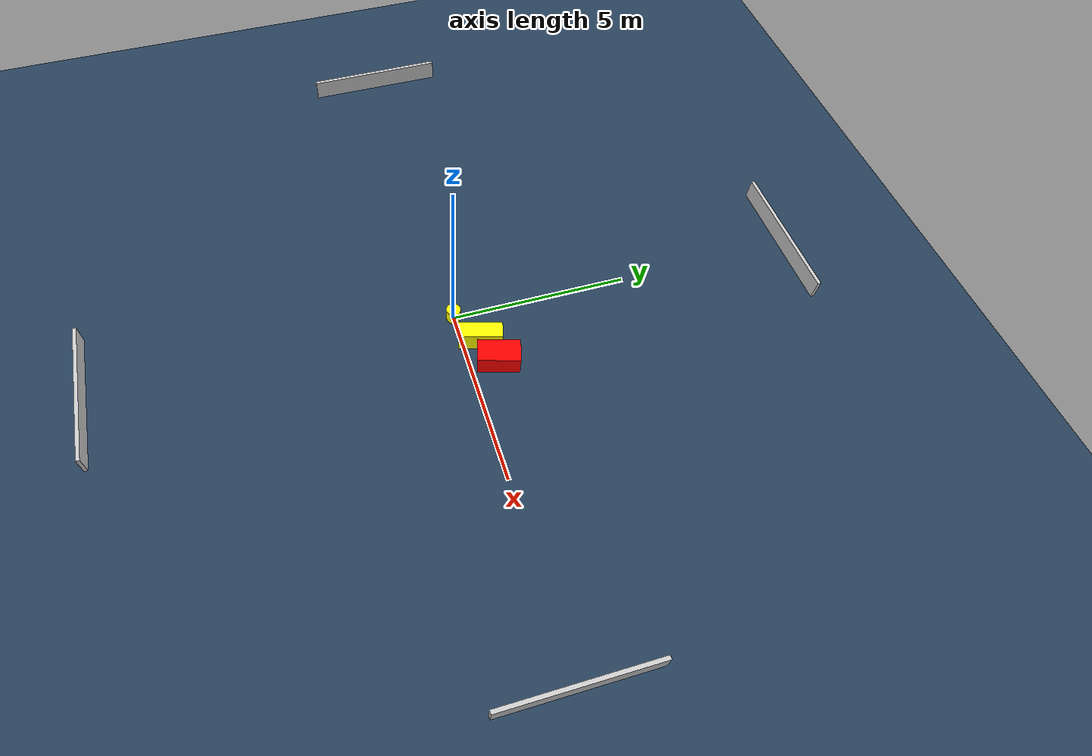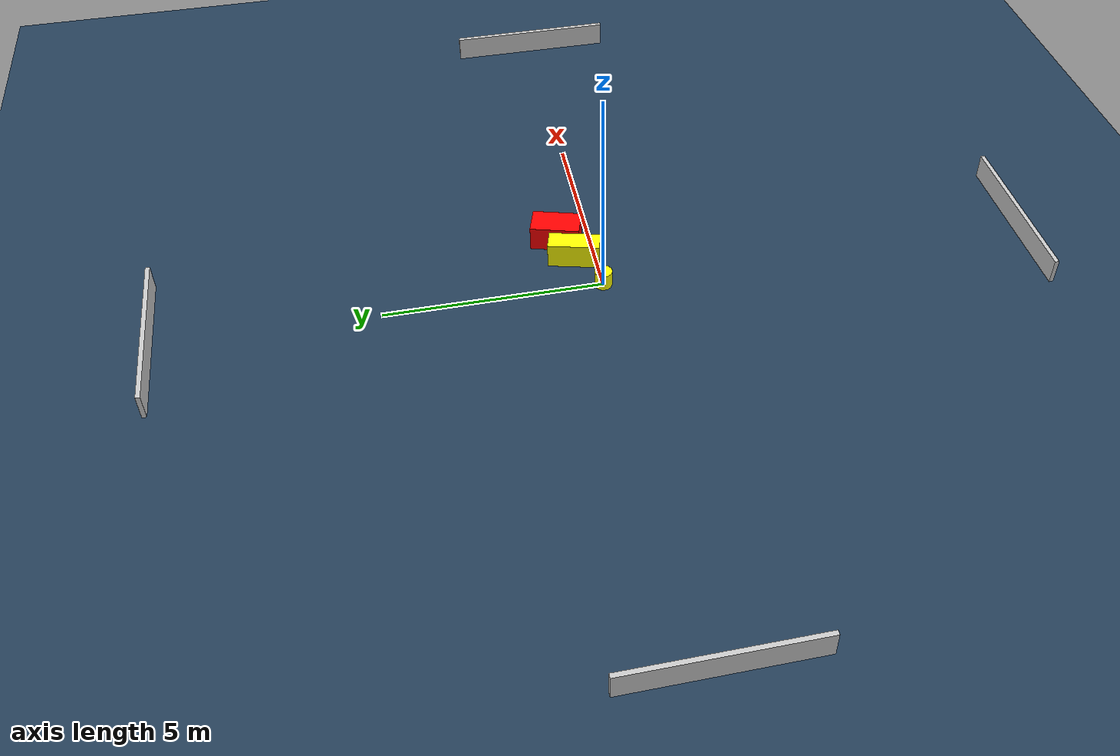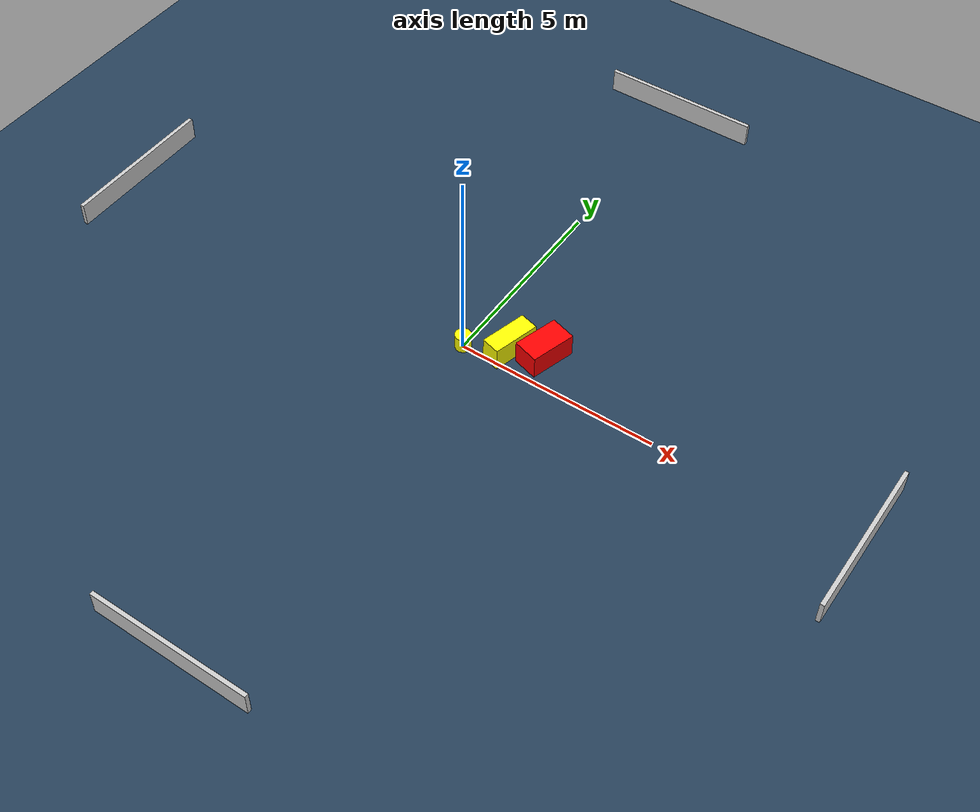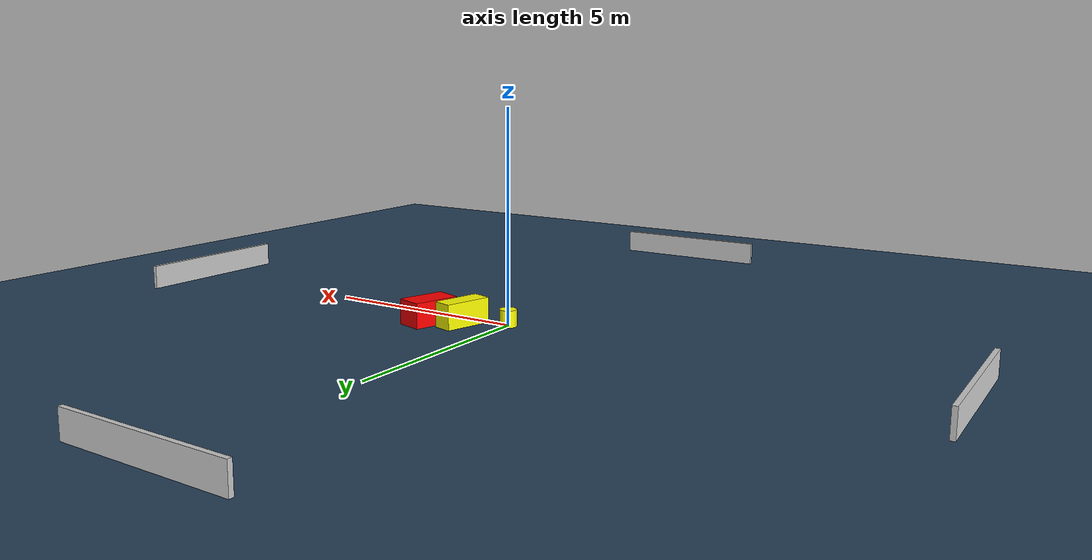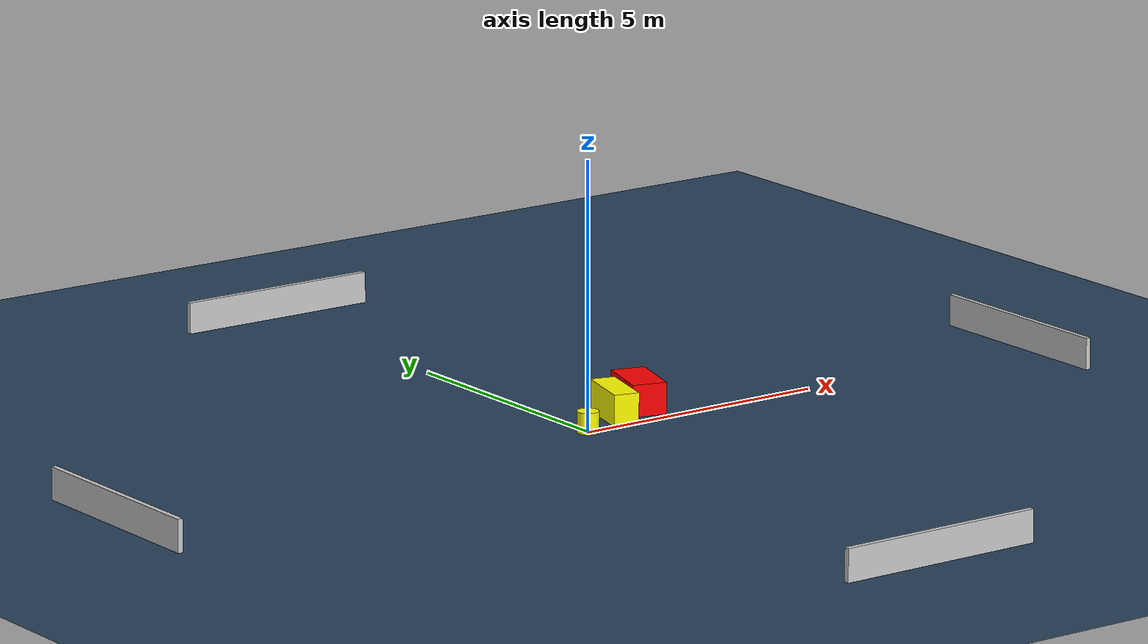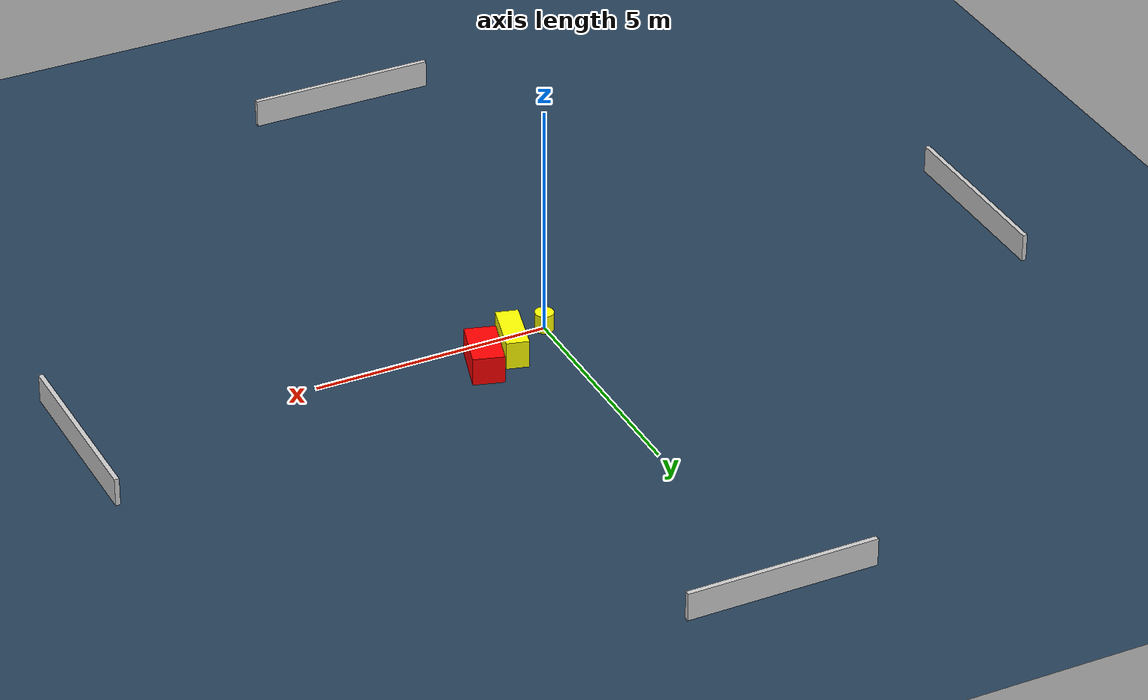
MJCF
<?xml version="1.0" ?>
<mujoco model="generated_environment">
  <option timestep="0.01" integrator="RK4" cone="elliptic"/>
  <default>
    <geom density="1"/>
  </default>
  <asset>
    <texture builtin="gradient" height="3072" name="skybox" rgb1="0.3 0.5 0.7" rgb2="0 0 0" type="skybox" width="512"/>
    <texture builtin="checker" height="300" name="groundplane" rgb1="0.2 0.3 0.4" rgb2="0.1 0.2 0.3" type="2d" width="300"/>
    <material name="groundplane" reflectance="0.2" texrepeat="5 5" texture="groundplane"/>
  </asset>
  <worldbody>
    <light dir="0 0 -1" directional="true" pos="0 0 1.5"/>
    <geom condim="3" friction="0.5 0.005 0.001" material="groundplane" name="floor" pos="0 0 0" size="0 0 0.05" type="plane"/>
    <body name="walls">
      <geom name="wall_1" condim="4" pos="-10.0 0.0 0.3" rgba="0.800000011920929 0.800000011920929 0.800000011920929 1.0" size="0.05 2.0 0.3" type="box"/>
      <geom name="wall_2" condim="4" pos="10.0 0.0 0.3" rgba="0.800000011920929 0.800000011920929 0.800000011920929 1.0" size="0.05 2.0 0.3" type="box"/>
      <geom name="wall_3" condim="4" pos="0.0 -10.0 0.3" rgba="0.800000011920929 0.800000011920929 0.800000011920929 1.0" size="2.0 0.05 0.3" type="box"/>
      <geom name="wall_4" condim="4" pos="0.0 10.0 0.3" rgba="0.800000011920929 0.800000011920929 0.800000011920929 1.0" size="2.0 0.05 0.3" type="box"/>
    </body>
    <body name="robot">
      <joint name="joint_x" type="slide" pos="0 0 0" axis="1 0 0"/>
      <joint name="joint_y" type="slide" pos="0 0 0" axis="0 1 0"/>
      <geom name="robot" type="cylinder" pos="0.0 0.0 0.2" size="0.2 0.2 0.0" mass="5.0" friction="1.0 0.005 0.0001" condim="4" rgba="1.0 1.0 0.0 1.0"/>
    </body>
    <body name="obstacle_1_movable">
      <geom name="obstacle_1_movable" condim="4" pos="0.951793336949731 0.48883091329667894 0.3" euler="0 0 255.15096428183273" friction="0.0 0.005 0.001" rgba="1.0 1.0 0.0 1.0" size="0.5936854532977704 0.23663193803958799 0.3" type="box" mass="0.1"/>
      <joint type="free"/>
    </body>
    <body name="obstacle_2_static">
      <geom name="obstacle_2_static" condim="4" pos="1.70416342735297 0.7752385875083345 0.3" euler="0 0 253.51993209843795" friction="0.0 0.005 0.001" rgba="1.0 0.0 0.0 1.0" size="0.5708649425898304 0.3255369032832408 0.3" type="box"/>
    </body>
  </worldbody>
  <actuator>
    <motor name="actuator_x" joint="joint_x" gear="1" ctrlrange="-1 1"/>
    <motor name="actuator_y" joint="joint_y" gear="1" ctrlrange="-1 1"/>
  </actuator>
</mujoco>
